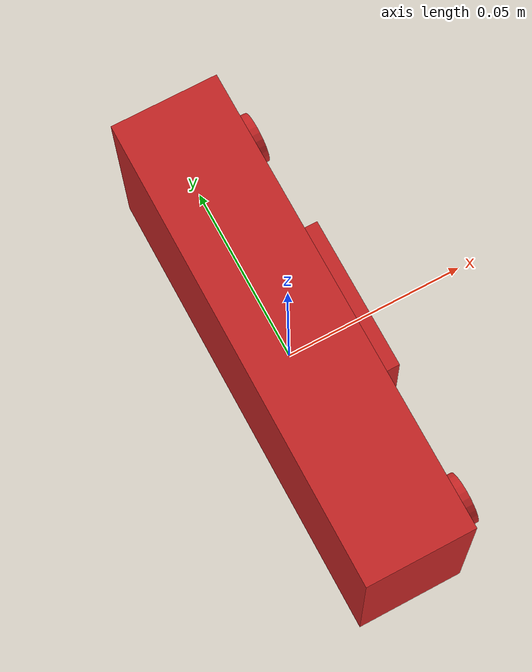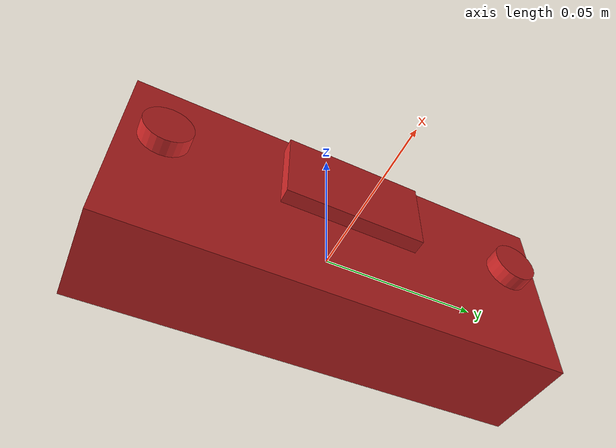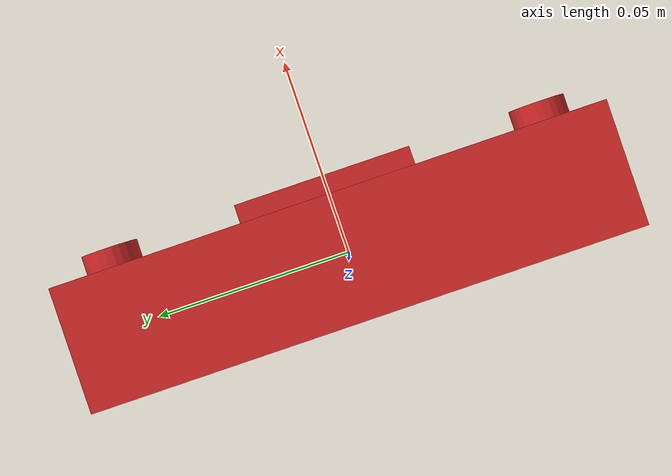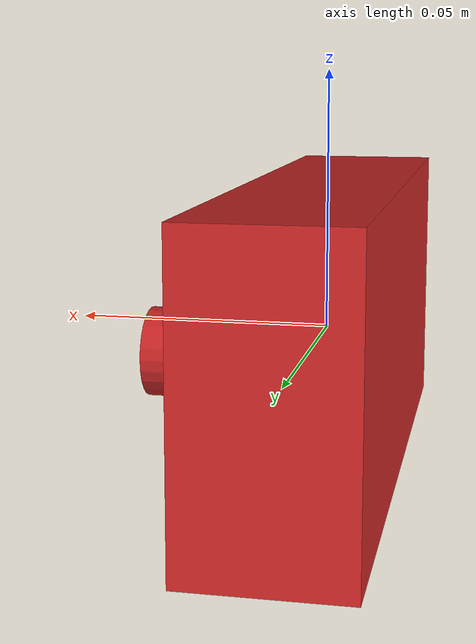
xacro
<?xml version="1.0"?>
<!-- Revolute-Revolute Manipulator -->
<robot name="test_camera_trajectory" xmlns:xacro="http://www.ros.org/wiki/xacro">
  <xacro:property name="PI" value="3.141592654" />

  <!-- Import all Gazebo-customization elements, including Gazebo colors -->
  <xacro:include filename="$(find mav_description)/urdf/test_camera_trajectory.gazebo" />

  <!-- Vi Sensor Link -->
  <link name="vi_sensor_link">
    <collision>
      <origin xyz="0 0 0" rpy="0 0 0" />
      <geometry>
        <box size="0.03 0.133 0.057" />
      </geometry>
    </collision>

    <visual>
      <origin xyz="0 0 0" rpy="0 0 0" />
      <geometry>
        <box size="0.03 0.133 0.057" />
      </geometry>
      <material name="red" />
    </visual>

    <inertial>
      <mass value="1e-5" />
      <origin xyz="0 0 0" rpy="0 0 0" />
      <inertia ixx="1e-6" ixy="0" ixz="0" iyy="1e-6" iyz="0" izz="1e-6" />
    </inertial>
  </link>

  <!-- Left Camera Link -->
  <link name="camera_left_link">
    <collision>
      <origin xyz="0 0 0" rpy="0 0 0" />
      <geometry>
        <cylinder length="0.01" radius="0.007" />
      </geometry>
    </collision>

    <visual>
      <origin xyz="0 0 0" rpy="0 ${PI/2} 0" />
      <geometry>
        <cylinder length="0.01" radius="0.007" />
      </geometry>
      <material name="red" />
    </visual>

    <inertial>
      <mass value="1e-5" />
      <origin xyz="0 0 0" rpy="0 ${PI/2} 0" />
      <inertia ixx="1e-6" ixy="0" ixz="0" iyy="1e-6" iyz="0" izz="1e-6" />
    </inertial>
  </link>

  <!-- Right Camera Link -->
  <link name="camera_right_link">
    <collision>
      <origin xyz="0 0 0" rpy="0 0 0" />
      <geometry>
        <cylinder length="0.01" radius="0.007" />
      </geometry>
    </collision>

    <visual>
      <origin xyz="0 0 0" rpy="0 ${PI/2} 0" />
      <geometry>
        <cylinder length="0.01" radius="0.007" />
      </geometry>
      <material name="red" />
    </visual>

    <inertial>
      <mass value="1e-5" />
      <origin xyz="0 0 0" rpy="0 ${PI/2} 0" />
      <inertia ixx="1e-6" ixy="0" ixz="0" iyy="1e-6" iyz="0" izz="1e-6" />
    </inertial>
  </link>

  <!-- IMU Link -->
  <link name="imu_link">
    <collision>
      <origin xyz="0 0 0" rpy="0 0 0" />
      <geometry>
        <box size="0.009 0.0425 0.024" />
      </geometry>
    </collision>

    <visual>
      <origin xyz="0 0 0" rpy="0 0 0" />
      <geometry>
        <box size="0.009 0.0425 0.024" />
      </geometry>
      <material name="red" />
    </visual>
    <inertial>
      <inertia ixx="0.001" ixy="0.0" ixz="0.0" iyy="0.001" iyz="0.0"
        izz="0.001" />
      <mass value="1" />  <!-- [kg] -->
      <origin xyz="0 0 0" rpy="0 0 0" />
    </inertial>
  </link>

    <!-- Left Camera Joint -->
  <joint name="camera_left_joint" type="revolute">
    <origin xyz="0.015 0.055 0.0065" rpy="0 0 0" />
    <parent link="vi_sensor_link" />
    <child link="camera_left_link" />
    <limit upper="0" lower="0" effort="0" velocity="0" />
  </joint>

    <!-- Right Camera Joint -->
  <joint name="camera_right_joint" type="revolute">
    <origin xyz="0.015 -0.055 0.0065" rpy="0 0 0" />
    <parent link="vi_sensor_link" />
    <child link="camera_right_link" />
    <limit upper="0" lower="0" effort="0" velocity="0" />
  </joint>

  <!-- IMU Joint -->
  <joint name="imu_joint" type="revolute">
    <origin xyz="0.015 0 0.0113" rpy="0 0 0" />
    <parent link="vi_sensor_link" />
    <child link="imu_link" />
    <limit upper="0" lower="0" effort="0" velocity="0" />
  </joint>

</robot>
